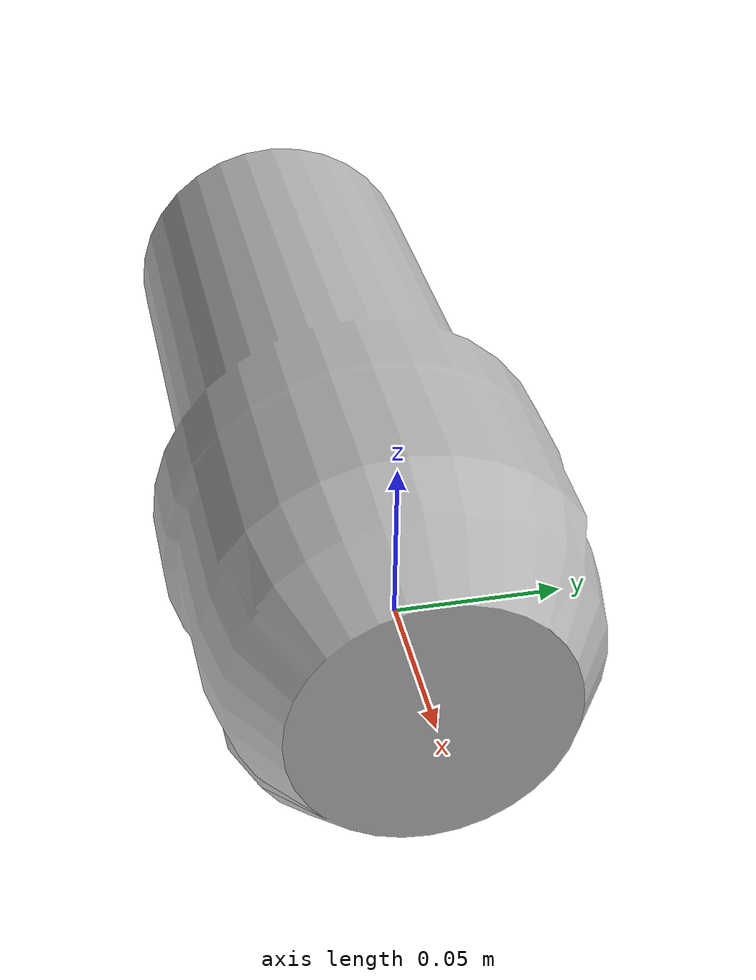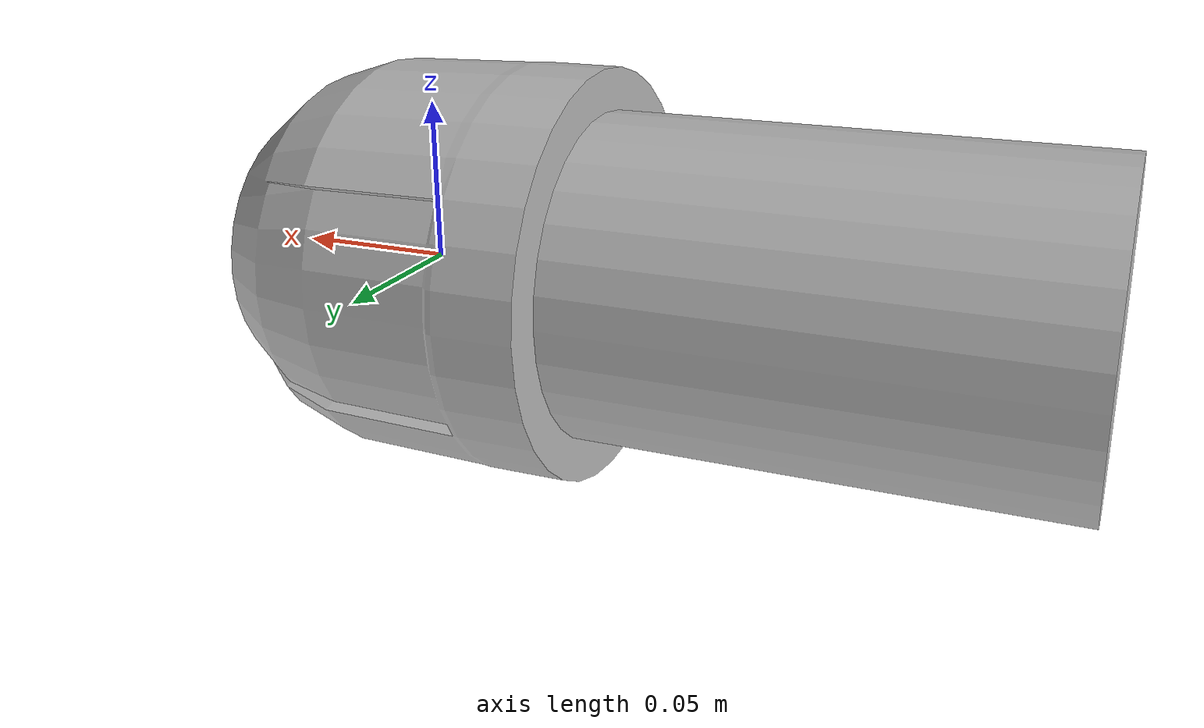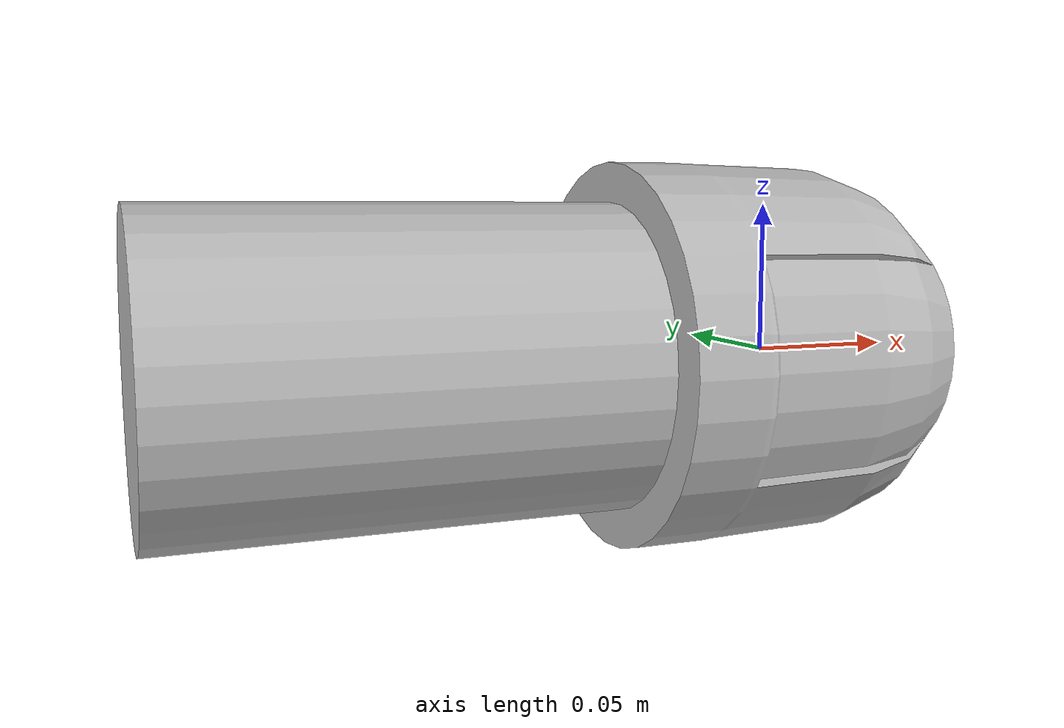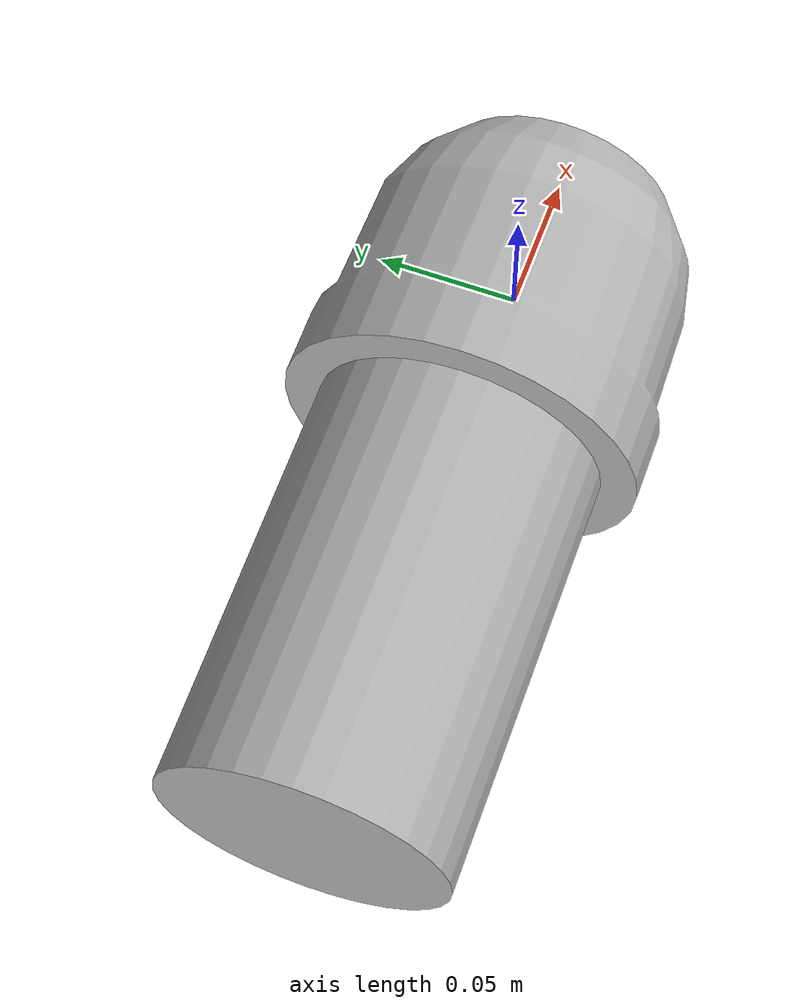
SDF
<?xml version="1.0" ?>
<sdf version="1.6">
  <model name="blueview_p900_ray">
    <link name="forward_sonar_link">
      <inertial>
        <pose>0 0 0 0 0 0</pose>
        <mass>4.35</mass>
        <inertia>
          <ixx>0.0360</ixx>          <!-- 1/12ml^2 -->
          <ixy>0</ixy>
          <ixz>0</ixz>
          <iyy>0</iyy>
          <iyz>0</iyz>
          <izz>0.0360</izz>
        </inertia>
      </inertial>
      <collision name="collision">
        <geometry>
          <mesh>
            <uri>model://blueview_p900_nps_multibeam/meshes/COLLISION-p900.dae</uri>
          </mesh>
        </geometry>
      </collision>
      <visual name="visual">
        <geometry>
          <mesh>
            <uri>model://blueview_p900_nps_multibeam/meshes/p900.dae</uri>
          </mesh>
        </geometry>
      </visual>

      <sensor name="ray_sonar" type="gpu_ray">
        <visualize>false</visualize>
        <always_on>true</always_on>
        <update_rate>20</update_rate>

        <ray>
          <scan>
            <!-- Set horizontal FOV by setting image height -->
            <!-- 512 beams with 90 degrees horizontal FOV (M900-90) -->
            <horizontal>
              <samples>512</samples>
              <resolution>1</resolution>
              <min_angle>-0.78539816339</min_angle>
              <max_angle>0.78539816339</max_angle>
            </horizontal>
            <!-- Set vertical FOV by setting image height -->
            <!-- Approx 2 times the spec sheet (sepc: 20 deg.) -->
            <vertical>
              <samples>300</samples>
              <resolution>1</resolution>
              <min_angle>-0.349066</min_angle>
              <max_angle>0.349066</max_angle>
            </vertical>
          </scan>
          <range>
            <!-- min range is a collision range no need to change-->
            <min>0.1</min>
            <max>10.0</max>
            <resolution>0.1</resolution>
          </range>
          <noise>
            <type>gaussian</type>
            <mean>0.0</mean>
            <stddev>0.01</stddev>
          </noise>
        </ray>

        <plugin name="ray_sonar_sensor" filename="libgazebo_ros_velodyne_gpu_laser.so">
           <topicName>multibeam_sonar_point_cloud</topicName>
           <static_reference_frame>forward_sonar_optical_link</static_reference_frame>
           <organize_cloud>true</organize_cloud>
           <min_range>0.2</min_range>
           <max_range>10.0</max_range>
        </plugin>

        <plugin filename="libnps_multibeam_sonar_ray_ros_plugin.so" name="forward_sonar">
          <!-- Sonar properties -->
          <verticalFOV>20</verticalFOV>
          <sonarFreq>900e3</sonarFreq>
          <bandwidth>29.9e3</bandwidth>
          <soundSpeed>1500</soundSpeed>
          <sourceLevel>220</sourceLevel>
          <maxDistance>10</maxDistance>
          <raySkips>1</raySkips>
          <sensorGain>0.02</sensorGain>
          <plotScaler>0</plotScaler>
          <writeLog>true</writeLog>
          <debugFlag>false</debugFlag>
          <writeFrameInterval>5</writeFrameInterval>
          <!-- This name is prepended to ROS topics -->
          <cameraName>blueview_p900</cameraName>
          <!-- ROS publication topics -->
          <imageTopicName>image_raw</imageTopicName>
          <cameraInfoTopicName>image_raw/camera_info</cameraInfoTopicName>
          <pointCloudTopicName>multibeam_sonar_point_cloud</pointCloudTopicName>
          <depthImageTopicName>image_depth</depthImageTopicName>
          <depthImageCameraInfoTopicName>image_depth/camera_info</depthImageCameraInfoTopicName>
          <sonarImageRawTopicName>sonar_image_raw</sonarImageRawTopicName>
          <sonarImageTopicName>sonar_image</sonarImageTopicName>
          <frameName>forward_sonar_optical_link</frameName>
        </plugin>
      </sensor>
    </link>

    <link name="forward_sonar_beam_visual_link">
      <inertial>
        <pose>0 0 0 0 0 0</pose>
        <mass>0.0001</mass>
        <inertia>
          <ixx>0.0000000017</ixx>          <!-- 1/12ml^2 -->
          <ixy>0</ixy>
          <ixz>0</ixz>
          <iyy>0.00000000017</iyy>
          <iyz>0</iyz>
          <izz>0.00000000017</izz>
        </inertia>
      </inertial>
      <sensor type="ray" name="forward_sonar_beam_visual">
        <pose>0 0 0 0 0 0</pose>
        <update_rate>5</update_rate>
        <visualize>true</visualize>
        <ray>
          <scan>
            <horizontal>
              <samples>10</samples>
              <resolution>1</resolution>
              <min_angle>-0.785398</min_angle>
              <max_angle>0.785398</max_angle>
            </horizontal>
            <vertical>
              <samples>3</samples>
              <resolution>1</resolution>
              <min_angle>-0.174533</min_angle>
              <max_angle>0.174533</max_angle>
            </vertical>
          </scan>
          <range>
            <min>0.2</min>
            <max>60</max>
            <resolution>0.01</resolution>
          </range>
        </ray>
      </sensor>
    </link>

    <joint name="forward_sonar_beam_visual_joint" type="fixed">
      <pose>0 0 0 0 0 0</pose>
      <parent>forward_sonar_link</parent>
      <child>forward_sonar_beam_visual_link</child>
    </joint>

  </model>
</sdf>
